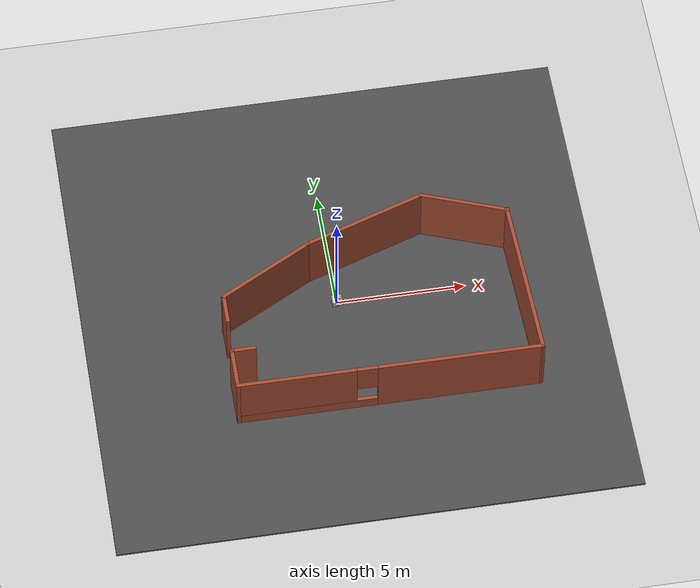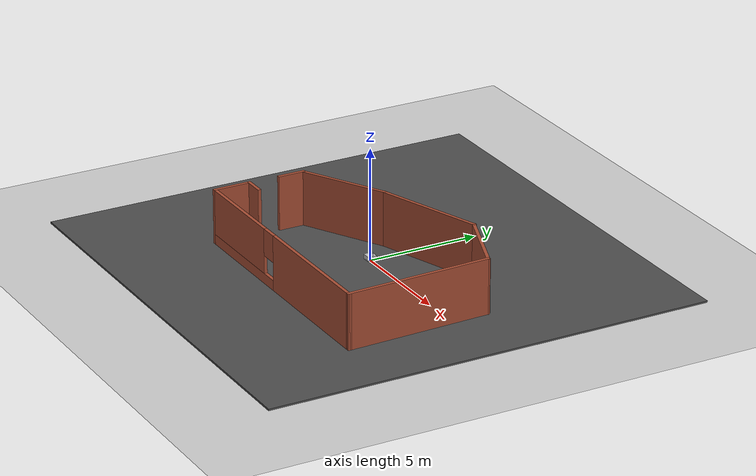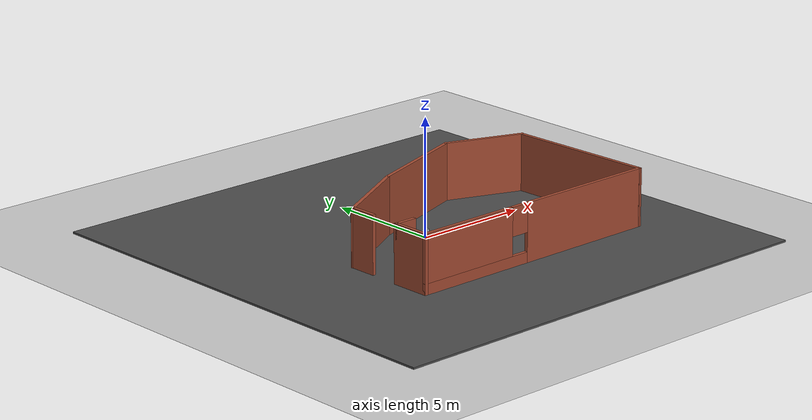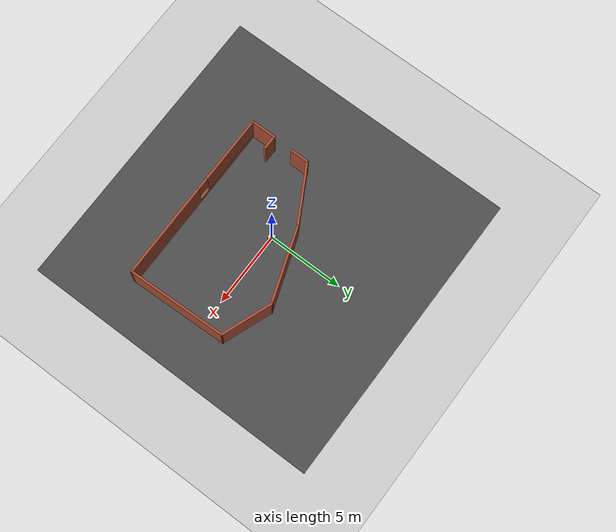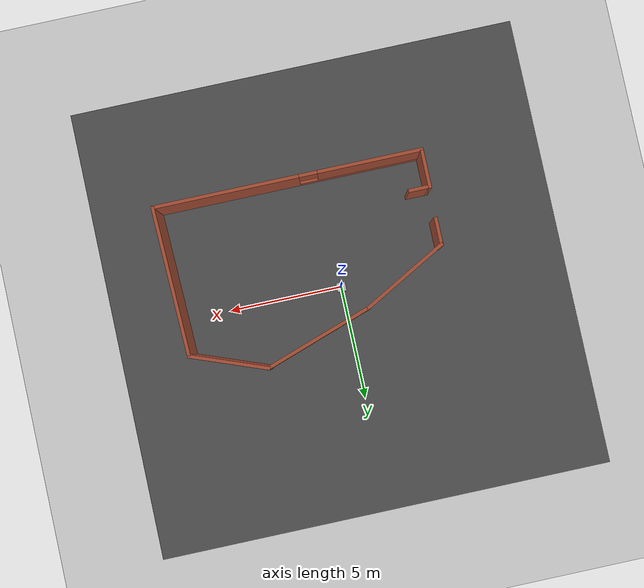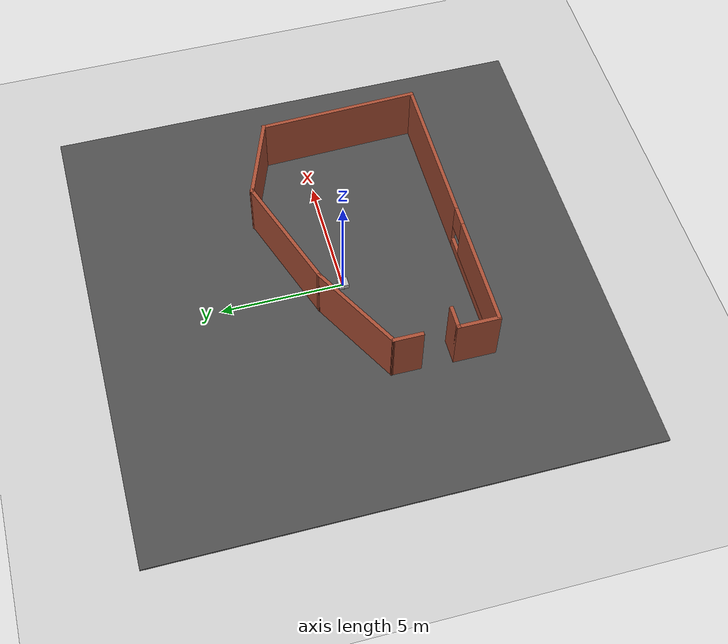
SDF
<sdf version="1.7">
 <world name="default">
  <light name="sun" type="directional">
   <pose>0 0 10 0 -0 0</pose>
   <diffuse>0.8 0.8 0.8 1</diffuse>
   <specular>0.2 0.2 0.2 1</specular>
   <attenuation>
    <range>1000</range>
    <constant>0.9</constant>
    <linear>0.01</linear>
    <quadratic>0.001</quadratic>
   </attenuation>
   <direction>-0.5 0.1 -0.9</direction>
   <spot><inner_angle>0</inner_angle><outer_angle>0</outer_angle><falloff>0</falloff></spot>
  </light>
  <model name="ground_plane">
   <static>1</static>
   <link name="link">
    <collision name="collision">
     <geometry><plane><normal>0 0 1</normal><size>100 100</size></plane></geometry>
     <surface>
      <contact><collide_bitmask>65535</collide_bitmask></contact>
      <friction><ode><mu>100</mu><mu2>50</mu2></ode></friction>
     </surface>
    </collision>
    <visual name="visual">
     <cast_shadows>0</cast_shadows>
     <geometry><plane><normal>0 0 1</normal><size>100 100</size></plane></geometry>
     <material>
      <script><uri>file://media/materials/scripts/gazebo.material</uri><name>Gazebo/Grey</name></script>
     </material>
    </visual>
   </link>
  </model>
  <gravity>0 0 -9.8</gravity>
  <magnetic_field>6e-06 2.3e-05 -4.2e-05</magnetic_field>
  <atmosphere type="adiabatic"/>
  <physics type="ode">
   <max_step_size>0.001</max_step_size>
   <real_time_factor>1</real_time_factor>
   <real_time_update_rate>1000</real_time_update_rate>
  </physics>
  <scene><ambient>0.4 0.4 0.4 1</ambient><background>0.7 0.7 0.7 1</background><shadows>1</shadows></scene>
  <spherical_coordinates>
   <surface_model>EARTH_WGS84</surface_model>
   <latitude_deg>0</latitude_deg>
   <longitude_deg>0</longitude_deg>
   <elevation>0</elevation>
   <heading_deg>0</heading_deg>
  </spherical_coordinates>
  <model name="differential_drive_robot">
   <link name="base_link">
    <inertial>
     <pose>1e-06 0 0.1 0 -0 0</pose>
     <mass>1.00001</mass>
     <inertia>
      <ixx>0.100001</ixx>
      <ixy>0</ixy>
      <ixz>-4.99995e-08</ixz>
      <iyy>0.100001</iyy>
      <iyz>0</iyz>
      <izz>0.100001</izz>
     </inertia>
    </inertial>
    <collision name="base_link_collision"><geometry><box><size>0.4 0.4 0.2</size></box></geometry></collision>
    <collision name="base_link_fixed_joint_lump__laser_collision_1">
     <pose>0.1 0 0.15 0 -0 0</pose>
     <geometry><box><size>0.1 0.1 0.1</size></box></geometry>
    </collision>
    <visual name="base_link_visual"><geometry><box><size>0.4 0.4 0.2</size></box></geometry></visual>
    <visual name="base_link_fixed_joint_lump__laser_visual_1">
     <pose>0.1 0 0.15 0 -0 0</pose>
     <geometry><box><size>0.1 0.1 0.1</size></box></geometry>
    </visual>
    <sensor name="laser_sensor" type="ray">
     <visualize>1</visualize>
     <update_rate>40</update_rate>
     <ray>
      <scan>
       <horizontal>
        <samples>640</samples>
        <resolution>1</resolution>
        <min_angle>-1.5708</min_angle>
        <max_angle>1.5708</max_angle>
       </horizontal>
       <vertical><samples>1</samples><min_angle>0</min_angle><max_angle>0</max_angle></vertical>
      </scan>
      <range><min>0.1</min><max>10</max><resolution>0.01</resolution></range>
     </ray>
     <plugin name="gazebo_ros_laser" filename="libgazebo_ros_laser.so">
      <topicName>scan</topicName>
      <frameName>laser</frameName>
      <robotNamespace>/</robotNamespace>
     </plugin>
     <pose>0.1 0 0.15 0 -0 0</pose>
    </sensor>
   </link>
   <joint name="back_wheel_joint" type="revolute">
    <pose relative_to="base_link">-0.2 0 -0.1 0 -0 0</pose>
    <parent>base_link</parent>
    <child>back_wheel</child>
    <axis>
     <xyz>0 1 0</xyz>
     <limit><lower>-1e+16</lower><upper>1e+16</upper></limit>
     <dynamics><spring_reference>0</spring_reference><spring_stiffness>0</spring_stiffness></dynamics>
    </axis>
   </joint>
   <link name="back_wheel">
    <pose relative_to="back_wheel_joint">0 0 0 0 -0 0</pose>
    <inertial>
     <mass>0.5</mass>
     <inertia><ixx>0.1</ixx><ixy>0</ixy><ixz>0</ixz><iyy>0.1</iyy><iyz>0</iyz><izz>0.1</izz></inertia>
    </inertial>
    <collision name="back_wheel_collision">
     <pose>0 0 0 1.5708 -0 0</pose>
     <geometry><cylinder><length>0.02</length><radius>0.05</radius></cylinder></geometry>
    </collision>
    <visual name="back_wheel_visual">
     <pose>0 0 0 1.5708 -0 0</pose>
     <geometry><cylinder><length>0.02</length><radius>0.05</radius></cylinder></geometry>
    </visual>
   </link>
   <joint name="front_wheel_joint" type="revolute">
    <pose relative_to="base_link">0.2 0 -0.1 0 -0 0</pose>
    <parent>base_link</parent>
    <child>front_wheel</child>
    <axis>
     <xyz>0 1 0</xyz>
     <limit><lower>-1e+16</lower><upper>1e+16</upper></limit>
     <dynamics><spring_reference>0</spring_reference><spring_stiffness>0</spring_stiffness></dynamics>
    </axis>
   </joint>
   <link name="front_wheel">
    <pose relative_to="front_wheel_joint">0 0 0 0 -0 0</pose>
    <inertial>
     <mass>0.5</mass>
     <inertia><ixx>0.1</ixx><ixy>0</ixy><ixz>0</ixz><iyy>0.1</iyy><iyz>0</iyz><izz>0.1</izz></inertia>
    </inertial>
    <collision name="front_wheel_collision">
     <pose>0 0 0 1.5708 -0 0</pose>
     <geometry><cylinder><length>0.02</length><radius>0.05</radius></cylinder></geometry>
    </collision>
    <visual name="front_wheel_visual">
     <pose>0 0 0 1.5708 -0 0</pose>
     <geometry><cylinder><length>0.02</length><radius>0.05</radius></cylinder></geometry>
    </visual>
   </link>
   <joint name="left_wheel_joint" type="revolute">
    <pose relative_to="base_link">0 0.2 -0.1 0 -0 0</pose>
    <parent>base_link</parent>
    <child>left_wheel</child>
    <axis>
     <xyz>0 1 0</xyz>
     <limit><lower>-1e+16</lower><upper>1e+16</upper></limit>
     <dynamics><spring_reference>0</spring_reference><spring_stiffness>0</spring_stiffness></dynamics>
    </axis>
   </joint>
   <link name="left_wheel">
    <pose relative_to="left_wheel_joint">0 0 0 0 -0 0</pose>
    <inertial>
     <mass>0.5</mass>
     <inertia><ixx>0.1</ixx><ixy>0</ixy><ixz>0</ixz><iyy>0.1</iyy><iyz>0</iyz><izz>0.1</izz></inertia>
    </inertial>
    <collision name="left_wheel_collision">
     <pose>0 0 0 1.5708 -0 0</pose>
     <geometry><cylinder><length>0.02</length><radius>0.05</radius></cylinder></geometry>
    </collision>
    <visual name="left_wheel_visual">
     <pose>0 0 0 1.5708 -0 0</pose>
     <geometry><cylinder><length>0.02</length><radius>0.05</radius></cylinder></geometry>
    </visual>
   </link>
   <joint name="right_wheel_joint" type="revolute">
    <pose relative_to="base_link">0 -0.2 -0.1 0 -0 0</pose>
    <parent>base_link</parent>
    <child>right_wheel</child>
    <axis>
     <xyz>0 1 0</xyz>
     <limit><lower>-1e+16</lower><upper>1e+16</upper></limit>
     <dynamics><spring_reference>0</spring_reference><spring_stiffness>0</spring_stiffness></dynamics>
    </axis>
   </joint>
   <link name="right_wheel">
    <pose relative_to="right_wheel_joint">0 0 0 0 -0 0</pose>
    <inertial>
     <mass>0.5</mass>
     <inertia><ixx>0.1</ixx><ixy>0</ixy><ixz>0</ixz><iyy>0.1</iyy><iyz>0</iyz><izz>0.1</izz></inertia>
    </inertial>
    <collision name="right_wheel_collision">
     <pose>0 0 0 1.5708 -0 0</pose>
     <geometry><cylinder><length>0.02</length><radius>0.05</radius></cylinder></geometry>
    </collision>
    <visual name="right_wheel_visual">
     <pose>0 0 0 1.5708 -0 0</pose>
     <geometry><cylinder><length>0.02</length><radius>0.05</radius></cylinder></geometry>
    </visual>
   </link>
   <static>0</static>
   <plugin name="robot_state_publisher" filename="libgazebo_ros_robot_state.so">
    <robotNamespace>/</robotNamespace>
   </plugin>
   <plugin name="joint_state_publisher" filename="libgazebo_ros_joint_state_publisher.so">
    <joint_state_topic>joint_states</joint_state_topic>
    <robotNamespace>/</robotNamespace>
   </plugin>
   <plugin name="differential_drive_controller" filename="libgazebo_ros_diff_drive.so">
    <robotNamespace>/</robotNamespace>
    <leftJoint>left_wheel_joint</leftJoint>
    <rightJoint>right_wheel_joint</rightJoint>
    <wheelSeparation>0.4</wheelSeparation>
    <wheelRadius>0.05</wheelRadius>
    <publishWheelTF>1</publishWheelTF>
    <publishWheelJointState>1</publishWheelJointState>
    <publishTf>1</publishTf>
    <updateRate>50</updateRate>
    <commandTopic>cmd_vel</commandTopic>
    <odometryTopic>odom</odometryTopic>
    <odometryFrame>odom</odometryFrame>
    <robotBaseFrame>base_link</robotBaseFrame>
    <odometrySource>1</odometrySource>
    <wheelDiameter>0.1</wheelDiameter>
    <wheelAcceleration>0</wheelAcceleration>
    <wheelTorque>5</wheelTorque>
   </plugin>
   <pose>0.000113 2.5e-05 0.15 0 0 -0.000255</pose>
  </model>
  <model name="myhome_1">
   <pose>1.28119 -1.03509 0 0 -0 0</pose>
   <link name="Wall_0">
    <collision name="Wall_0_Collision">
     <geometry><box><size>1.25 0.15 2.5</size></box></geometry>
     <pose>0 0 1.25 0 -0 0</pose>
    </collision>
    <visual name="Wall_0_Visual">
     <pose>0 0 1.25 0 -0 0</pose>
     <geometry><box><size>1.25 0.15 2.5</size></box></geometry>
     <material>
      <script><uri>file://media/materials/scripts/gazebo.material</uri><name>Gazebo/Bricks</name></script>
      <ambient>1 1 1 1</ambient>
     </material>
     <meta><layer>0</layer></meta>
    </visual>
    <pose>-5.75119 -0.274908 0 0 -0 1.5708</pose>
   </link>
   <link name="Wall_1">
    <collision name="Wall_1_Collision">
     <geometry><box><size>4.19324 0.15 2.5</size></box></geometry>
     <pose>0 0 1.25 0 -0 0</pose>
    </collision>
    <visual name="Wall_1_Visual">
     <pose>0 0 1.25 0 -0 0</pose>
     <geometry><box><size>4.19324 0.15 2.5</size></box></geometry>
     <material>
      <script><uri>file://media/materials/scripts/gazebo.material</uri><name>Gazebo/Bricks</name></script>
      <ambient>0.996078 0.47451 0.0196078 1</ambient>
     </material>
     <meta><layer>0</layer></meta>
    </visual>
    <pose>-3.97844 1.24684 0 0 -0 0.501429</pose>
   </link>
   <link name="Wall_11">
    <collision name="Wall_11_Collision">
     <geometry><box><size>3.52273 0.15 2.5</size></box></geometry>
     <pose>0 0 1.25 0 -0 0</pose>
    </collision>
    <visual name="Wall_11_Visual">
     <pose>0 0 1.25 0 -0 0</pose>
     <geometry><box><size>3.52273 0.15 2.5</size></box></geometry>
     <material>
      <script><uri>file://media/materials/scripts/gazebo.material</uri><name>Gazebo/Bricks</name></script>
      <ambient>0.996078 0.47451 0.0196078 1</ambient>
     </material>
     <meta><layer>0</layer></meta>
    </visual>
    <pose>4.01456 3.20884 0 0 -0 -0.361703</pose>
   </link>
   <link name="Wall_12">
    <collision name="Wall_12_Collision">
     <geometry><box><size>6.59033 0.15 2.5</size></box></geometry>
     <pose>0 0 1.25 0 -0 0</pose>
    </collision>
    <visual name="Wall_12_Visual">
     <pose>0 0 1.25 0 -0 0</pose>
     <geometry><box><size>6.59033 0.15 2.5</size></box></geometry>
     <material>
      <script><uri>file://media/materials/scripts/gazebo.material</uri><name>Gazebo/Bricks</name></script>
      <ambient>0.996078 0.47451 0.0196078 1</ambient>
     </material>
     <meta><layer>0</layer></meta>
    </visual>
    <pose>5.69531 -0.606408 0 0 -0 -1.53865</pose>
   </link>
   <link name="Wall_13">
    <pose>-0.001186 -3.82491 0 0 -0 3.14159</pose>
    <visual name="Wall_13_Visual_0">
     <pose>-2.6925 0 1.25 0 -0 0</pose>
     <geometry><box><size>6.365 0.15 2.5</size></box></geometry>
     <material>
      <script><uri>file://media/materials/scripts/gazebo.material</uri><name>Gazebo/Bricks</name></script>
      <ambient>0.996078 0.47451 0.0196078 1</ambient>
     </material>
     <meta><layer>0</layer></meta>
    </visual>
    <collision name="Wall_13_Collision_0">
     <geometry><box><size>6.365 0.15 2.5</size></box></geometry>
     <pose>-2.6925 0 1.25 0 -0 0</pose>
    </collision>
    <visual name="Wall_13_Visual_1">
     <pose>3.1825 0 0.25 0 -0 0</pose>
     <geometry><box><size>5.385 0.15 0.5</size></box></geometry>
     <material>
      <script><uri>file://media/materials/scripts/gazebo.material</uri><name>Gazebo/Bricks</name></script>
      <ambient>0.996078 0.47451 0.0196078 1</ambient>
     </material>
     <meta><layer>0</layer></meta>
    </visual>
    <collision name="Wall_13_Collision_1">
     <geometry><box><size>5.385 0.15 0.5</size></box></geometry>
     <pose>3.1825 0 0.25 0 -0 0</pose>
    </collision>
    <visual name="Wall_13_Visual_2">
     <pose>3.5825 0 1.5 0 -0 0</pose>
     <geometry><box><size>4.585 0.15 2</size></box></geometry>
     <material>
      <script><uri>file://media/materials/scripts/gazebo.material</uri><name>Gazebo/Bricks</name></script>
      <ambient>0.996078 0.47451 0.0196078 1</ambient>
     </material>
     <meta><layer>0</layer></meta>
    </visual>
    <collision name="Wall_13_Collision_2">
     <geometry><box><size>4.585 0.15 2</size></box></geometry>
     <pose>3.5825 0 1.5 0 -0 0</pose>
    </collision>
    <visual name="Wall_13_Visual_3">
     <pose>0.89 0 1.9 0 -0 0</pose>
     <geometry><box><size>0.8 0.15 1.2</size></box></geometry>
     <material>
      <script><uri>file://media/materials/scripts/gazebo.material</uri><name>Gazebo/Bricks</name></script>
      <ambient>0.996078 0.47451 0.0196078 1</ambient>
     </material>
     <meta><layer>0</layer></meta>
    </visual>
    <collision name="Wall_13_Collision_3">
     <geometry><box><size>0.8 0.15 1.2</size></box></geometry>
     <pose>0.89 0 1.9 0 -0 0</pose>
    </collision>
   </link>
   <link name="Wall_14">
    <collision name="Wall_14_Collision">
     <geometry><box><size>1.75 0.15 2.5</size></box></geometry>
     <pose>0 0 1.25 0 -0 0</pose>
    </collision>
    <visual name="Wall_14_Visual">
     <pose>0 0 1.25 0 -0 0</pose>
     <geometry><box><size>1.75 0.15 2.5</size></box></geometry>
     <material>
      <script><uri>file://media/materials/scripts/gazebo.material</uri><name>Gazebo/Bricks</name></script>
      <ambient>1 1 1 1</ambient>
     </material>
     <meta><layer>0</layer></meta>
    </visual>
    <pose>-5.80119 -3.02491 0 0 -0 1.5708</pose>
   </link>
   <link name="Wall_15">
    <collision name="Wall_15_Collision">
     <geometry><box><size>1 0.15 2.5</size></box></geometry>
     <pose>0 0 1.25 0 -0 0</pose>
    </collision>
    <visual name="Wall_15_Visual">
     <pose>0 0 1.25 0 -0 0</pose>
     <geometry><box><size>1 0.15 2.5</size></box></geometry>
     <material>
      <script><uri>file://media/materials/scripts/gazebo.material</uri><name>Gazebo/Bricks</name></script>
      <ambient>0.996078 0.47451 0.0196078 1</ambient>
     </material>
     <meta><layer>0</layer></meta>
    </visual>
    <pose>-5.37619 -2.22491 0 0 -0 0</pose>
   </link>
   <link name="Wall_6">
    <collision name="Wall_6_Collision">
     <geometry><box><size>5.05673 0.15 2.5</size></box></geometry>
     <pose>0 0 1.25 0 -0 0</pose>
    </collision>
    <visual name="Wall_6_Visual">
     <pose>0 0 1.25 0 -0 0</pose>
     <geometry><box><size>5.05673 0.15 2.5</size></box></geometry>
     <material>
      <script><uri>file://media/materials/scripts/gazebo.material</uri><name>Gazebo/Bricks</name></script>
      <ambient>0.996078 0.47451 0.0196078 1</ambient>
     </material>
     <meta><layer>0</layer></meta>
    </visual>
    <pose>0.115814 3.01209 0 0 -0 0.329355</pose>
   </link>
   <static>1</static>
  </model>
  <model name="asphalt_plane">
   <static>1</static>
   <link name="link">
    <collision name="collision"><geometry><box><size>20 20 0.1</size></box></geometry></collision>
    <visual name="visual">
     <cast_shadows>0</cast_shadows>
     <geometry><box><size>20 20 0.1</size></box></geometry>
     <material>
      <script>
       <uri>model://asphalt_plane/materials/scripts</uri>
       <uri>model://asphalt_plane/materials/textures</uri>
       <name>vrc/asphalt</name>
      </script>
     </material>
    </visual>
   </link>
   <pose>0.127194 -0.009093 0 0 -0 0</pose>
  </model>
 </world>
</sdf>
